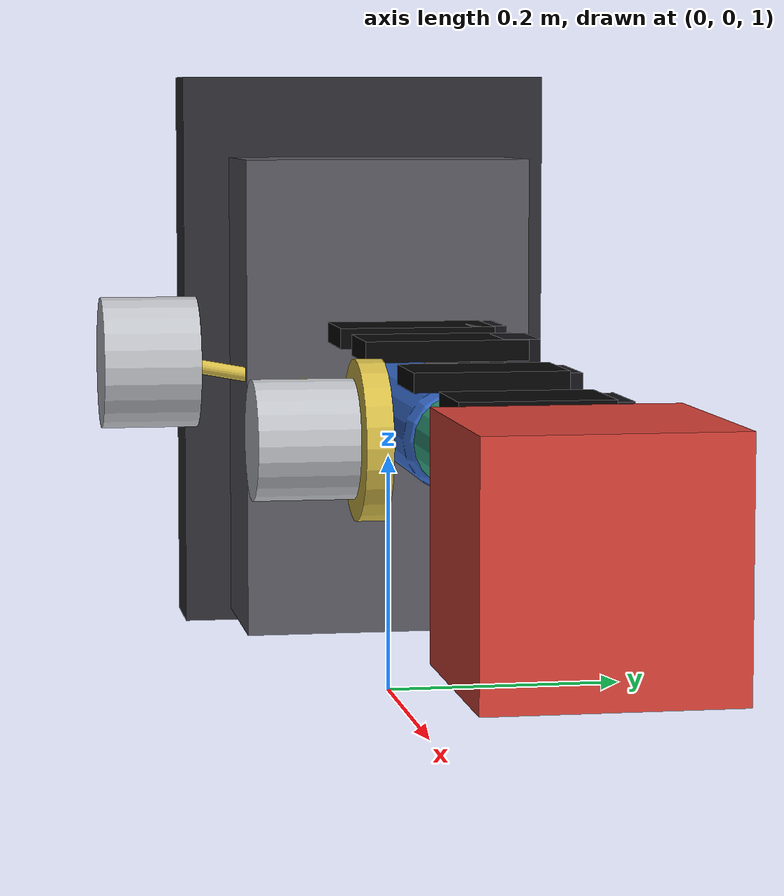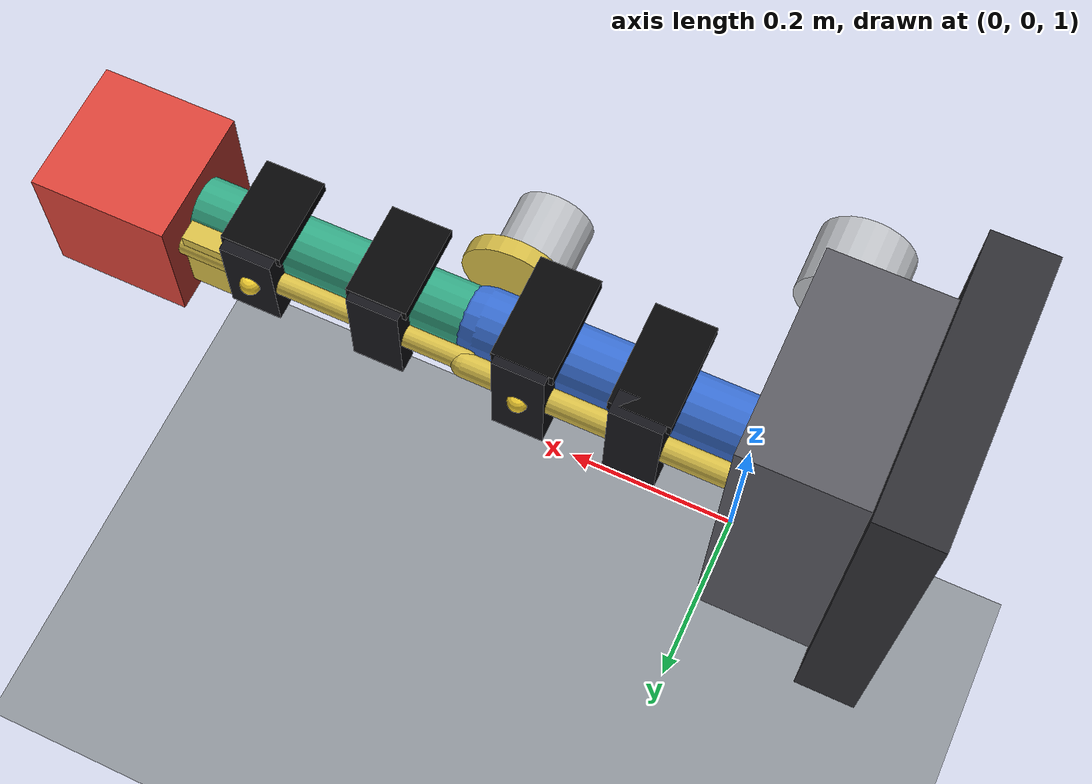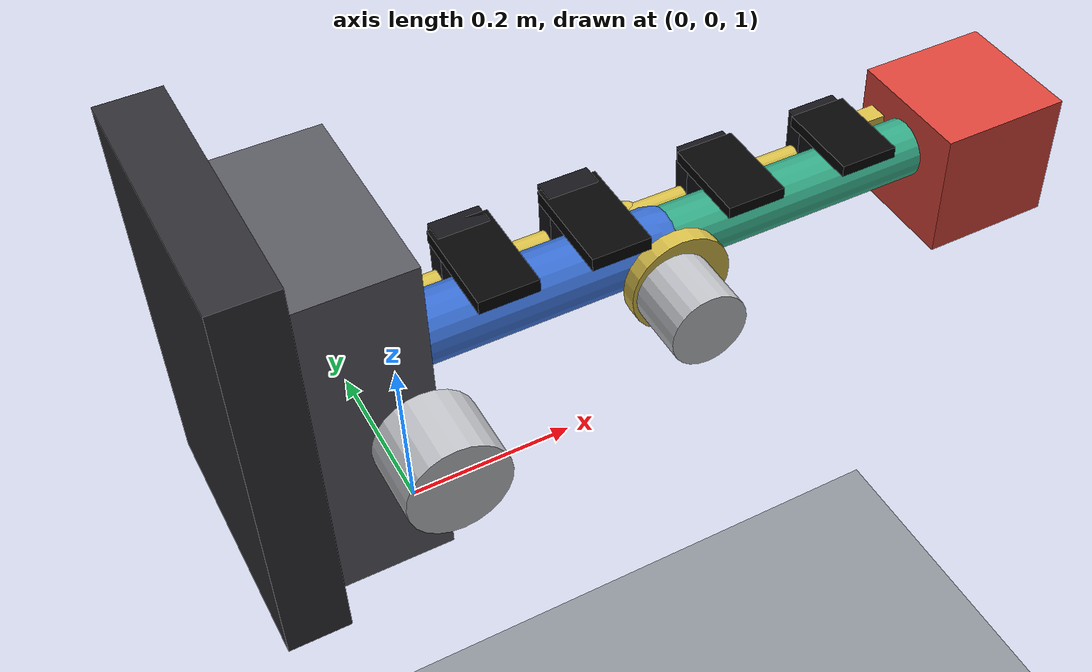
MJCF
<mujoco model="arm_exoskeleton_design_v0_1">
  <compiler angle="degree" coordinate="local" inertiafromgeom="true"/>

  <option timestep="0.005" gravity="0 0 -9.80665" integrator="RK4"/>

  <visual>
    <global offwidth="1280" offheight="720"/>
  </visual>

  <default>
    <joint damping="0.02" armature="0.01" limited="true"/>
    <geom condim="3" friction="0.8 0.02 0.001"/>
    <motor ctrllimited="true"/>
  </default>

  <asset>
    <material name="upper_arm_mat" rgba="0.22 0.43 0.82 1"/>
    <material name="forearm_mat" rgba="0.20 0.66 0.52 1"/>
    <material name="exo_mat" rgba="0.84 0.74 0.28 1"/>
    <material name="cuff_mat" rgba="0.08 0.08 0.10 1"/>
    <material name="strap_mat" rgba="0.02 0.02 0.025 1"/>
    <material name="motor_mat" rgba="0.75 0.76 0.78 1"/>
    <material name="payload_mat" rgba="0.85 0.26 0.22 1"/>
    <material name="floor_mat" rgba="0.55 0.57 0.60 1"/>
  </asset>

  <worldbody>
    <light name="key_light" pos="0 -3 3" dir="0 1 -1" diffuse="0.8 0.8 0.8"/>
    <geom name="floor" type="plane" pos="0 0 0" size="2 2 0.05" material="floor_mat"/>

    <body name="torso_anchor" pos="0 0 1.25">
      <geom name="torso_stub" type="box" pos="-0.08 0 0" size="0.08 0.12 0.20" rgba="0.35 0.35 0.38 1"/>
      <geom name="backpack_plate" type="box" pos="-0.17 0 0.03" size="0.035 0.16 0.24" mass="0.75" rgba="0.18 0.18 0.20 1"/>
      <geom name="shoulder_motor_housing" type="cylinder" fromto="-0.03 -0.16 0.03 -0.03 -0.24 0.03" size="0.055" mass="0.55" material="motor_mat"/>
      <geom name="shoulder_transmission_cable" type="capsule" fromto="-0.03 -0.18 0.03 0 -0.06 0.01" size="0.006" mass="0.03" material="exo_mat"/>
      <site name="shoulder_site" pos="0 0 0" size="0.025" rgba="1 1 1 1"/>

      <body name="upper_arm" pos="0 0 0">
        <!-- Axis 0 -1 0 makes positive joint angles lift the arm upward. -->
        <joint name="shoulder_flexion" type="hinge" axis="0 -1 0" range="-35 125" damping="0.60"/>
        <geom name="upper_arm_geom" type="capsule" fromto="0 0 0 0.31 0 0" size="0.04" mass="2.1" material="upper_arm_mat"/>
        <geom name="upper_exo_bar" type="capsule" fromto="0 0.055 0 0.31 0.055 0" size="0.014" mass="0.20" material="exo_mat"/>
        <geom name="upper_arm_cuff_proximal" type="box" pos="0.11 0.058 0" size="0.030 0.014 0.070" mass="0.10" material="cuff_mat"/>
        <geom name="upper_arm_cuff_distal" type="box" pos="0.24 0.058 0" size="0.030 0.014 0.070" mass="0.11" material="cuff_mat"/>
        <geom name="upper_arm_strap_proximal" type="box" pos="0.11 0 0.062" size="0.035 0.062 0.008" mass="0.025" material="strap_mat"/>
        <geom name="upper_arm_strap_distal" type="box" pos="0.24 0 0.062" size="0.035 0.062 0.008" mass="0.025" material="strap_mat"/>
        <site name="upper_cuff_force_site" pos="0.24 0.07 0" size="0.012" rgba="1 0.85 0.2 1"/>

        <body name="forearm" pos="0.31 0 0">
          <joint name="elbow_flexion" type="hinge" axis="0 -1 0" range="0 145" damping="0.35"/>
          <geom name="elbow_motor_housing" type="cylinder" fromto="-0.015 -0.07 0 -0.015 -0.15 0" size="0.045" mass="0.40" material="motor_mat"/>
          <geom name="elbow_drive_plate" type="cylinder" fromto="-0.005 -0.055 0 -0.005 -0.075 0" size="0.060" mass="0.10" material="exo_mat"/>
          <geom name="forearm_geom" type="capsule" fromto="0 0 0 0.34 0 0" size="0.035" mass="1.65" material="forearm_mat"/>
          <geom name="forearm_exo_bar" type="capsule" fromto="0 0.05 0 0.34 0.05 0" size="0.012" mass="0.16" material="exo_mat"/>
          <geom name="forearm_cuff_proximal" type="box" pos="0.10 0.053 0" size="0.030 0.012 0.060" mass="0.09" material="cuff_mat"/>
          <geom name="forearm_cuff_distal" type="box" pos="0.25 0.053 0" size="0.030 0.012 0.055" mass="0.09" material="cuff_mat"/>
          <geom name="forearm_strap_proximal" type="box" pos="0.10 0 0.055" size="0.035 0.055 0.007" mass="0.02" material="strap_mat"/>
          <geom name="forearm_strap_distal" type="box" pos="0.25 0 0.050" size="0.035 0.052 0.007" mass="0.02" material="strap_mat"/>
          <geom name="handle_side_bracket" type="box" pos="0.31 0.045 -0.02" size="0.025 0.012 0.045" mass="0.06" material="exo_mat"/>
          <site name="forearm_cuff_force_site" pos="0.25 0.065 0" size="0.012" rgba="1 0.85 0.2 1"/>

          <body name="payload" pos="0.34 0 0">
            <site name="hand_site" pos="0 0 0" size="0.025" rgba="1 1 1 1"/>
            <geom name="payload_geom" type="box" pos="0.08 0 -0.02" size="0.08 0.08 0.08" mass="5.0" material="payload_mat"/>
          </body>
        </body>
      </body>
    </body>
  </worldbody>

  <actuator>
    <motor name="shoulder_motor" joint="shoulder_flexion" gear="1" ctrlrange="-80 80"/>
    <motor name="elbow_motor" joint="elbow_flexion" gear="1" ctrlrange="-60 60"/>
  </actuator>
</mujoco>
